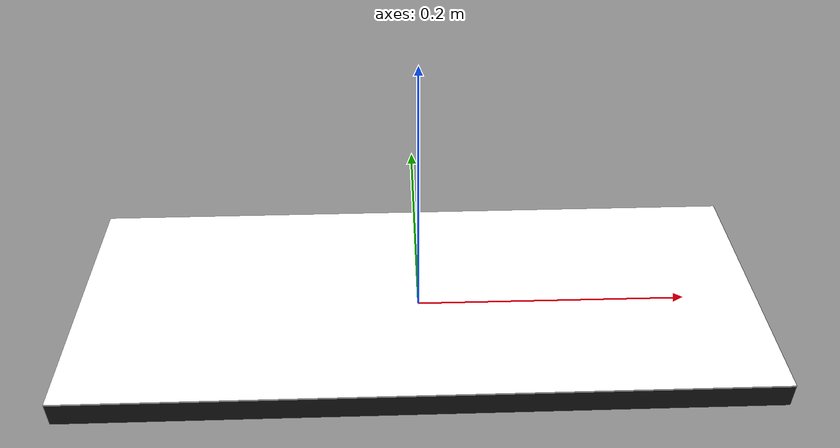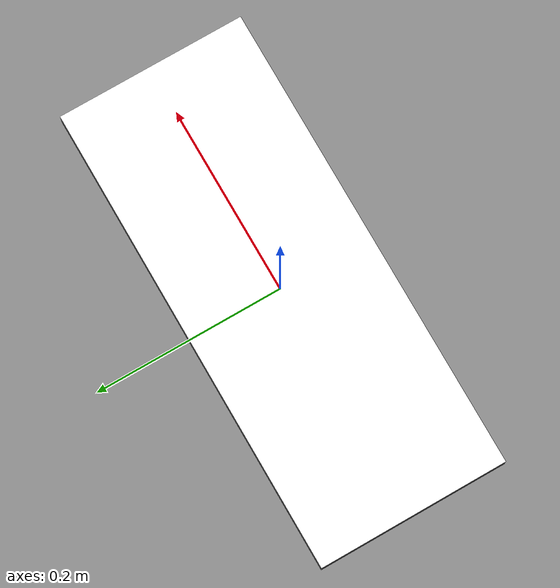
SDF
<?xml version="1.0"?>
<sdf version="1.9">
  <model name="aruco_keyboard">
    <static>true</static>
    <link name="body">
      <collision name="body_collision">
        <geometry>
          <box><size>0.50 0.20 0.02</size></box>
        </geometry>
      </collision>
      <visual name="body_visual">
        <geometry>
          <box><size>0.50 0.20 0.018</size></box>
        </geometry>
        <material>
          <ambient>0.1 0.1 0.1 1</ambient>
          <diffuse>0.1 0.1 0.1 1</diffuse>
        </material>
      </visual>
      <!-- Thin textured slab riding on top of the body so the keyboard
           face texture is only visible from above. -->
      <visual name="face_visual">
        <pose>0 0 0.0095 0 0 0</pose>
        <geometry>
          <box><size>0.50 0.20 0.001</size></box>
        </geometry>
        <material>
          <diffuse>1 1 1 1</diffuse>
          <specular>0.05 0.05 0.05 1</specular>
          <pbr>
            <metal>
              <albedo_map>model://aruco_keyboard/materials/textures/keyboard.png</albedo_map>
              <roughness>0.9</roughness>
              <metalness>0.0</metalness>
            </metal>
          </pbr>
        </material>
      </visual>
    </link>
  </model>
</sdf>
